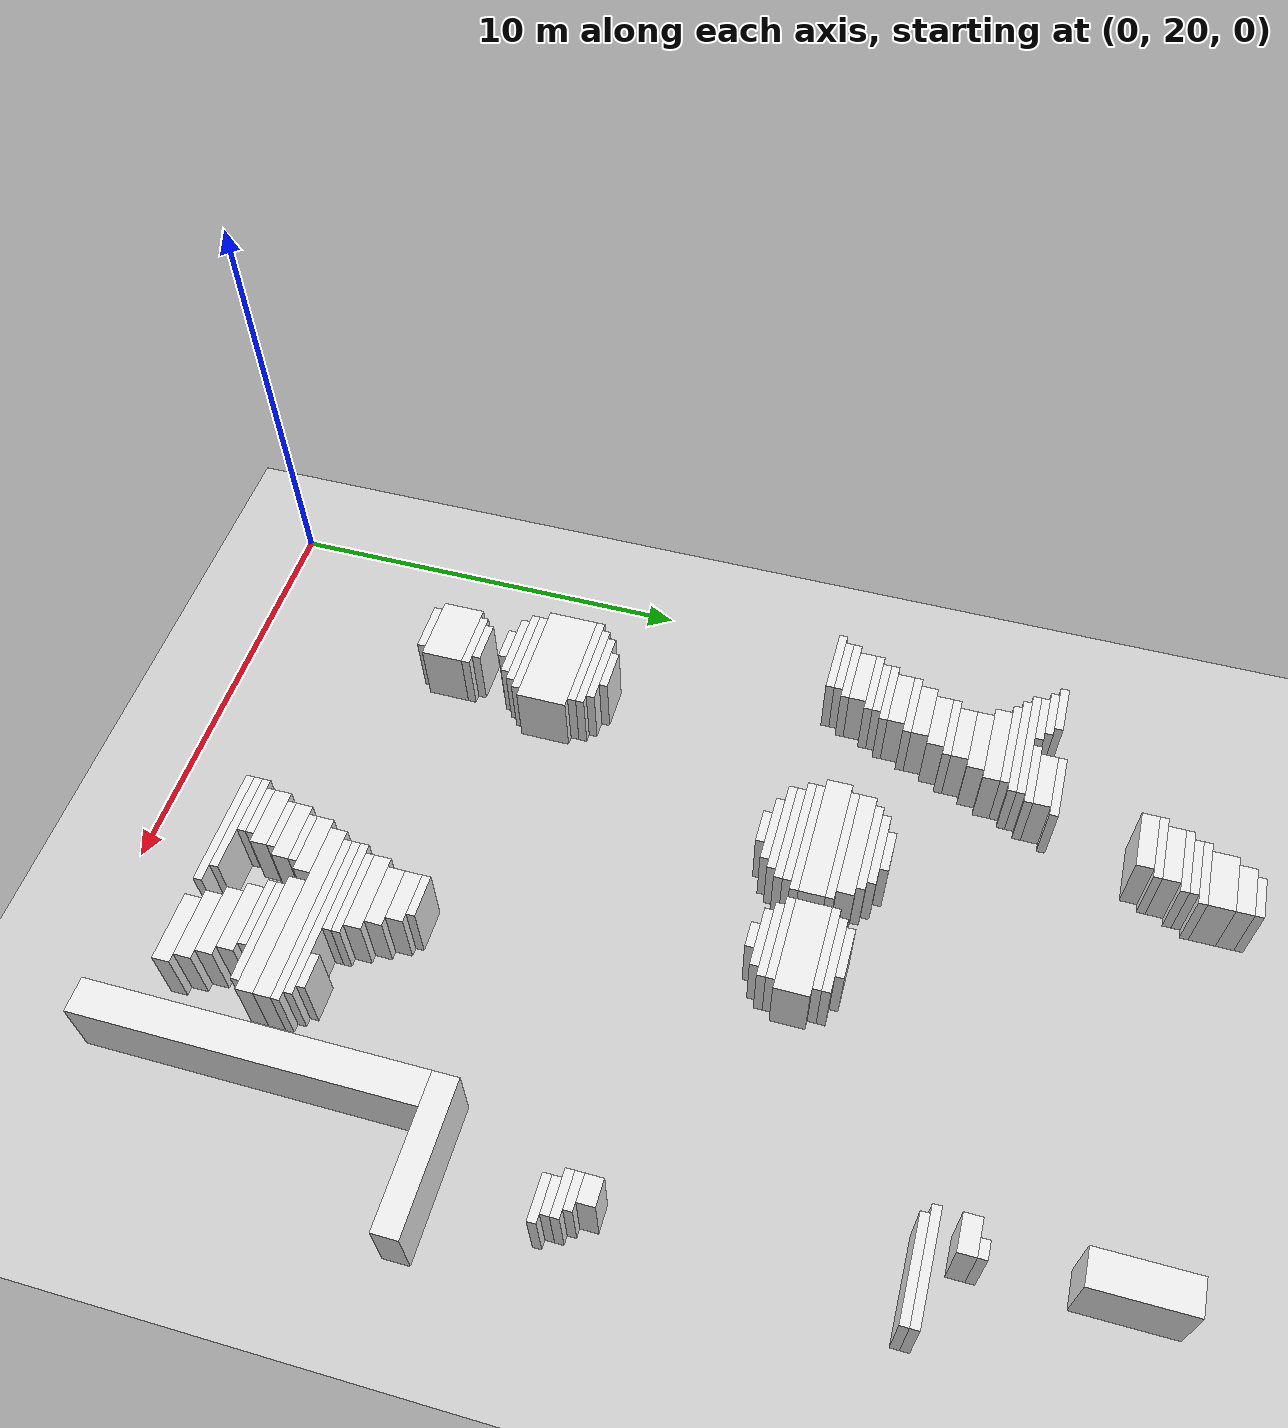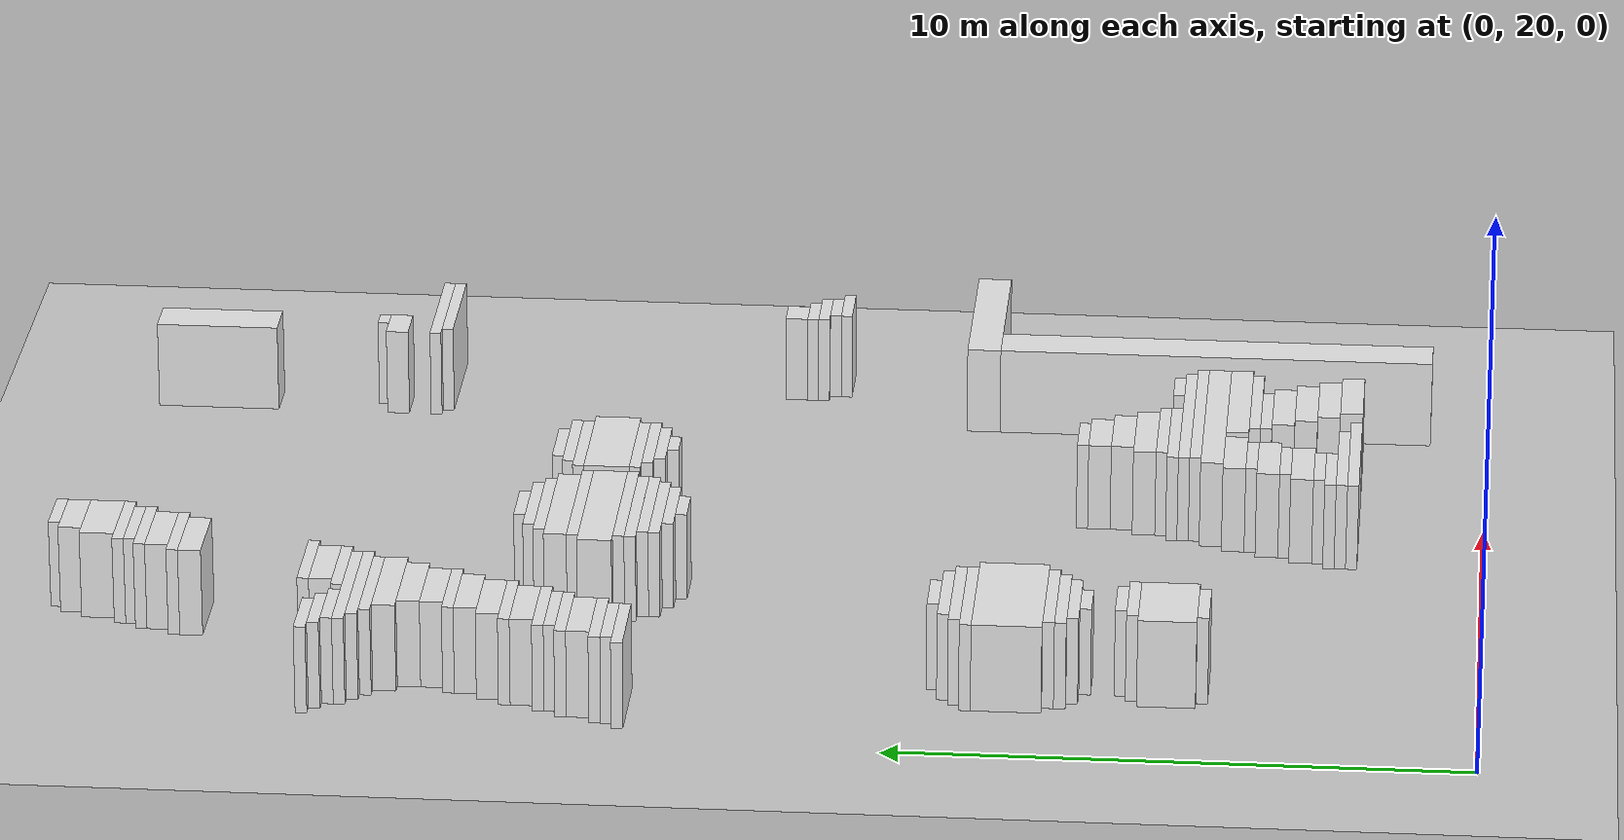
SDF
<sdf version="1.7">
 <world name="default">
  <model name="ground_plane">
   <static>1</static>
   <link name="link">
    <collision name="collision">
     <geometry><plane><normal>0 0 1</normal><size>120 120</size></plane></geometry>
    </collision>
    <visual name="visual">
     <geometry><plane><normal>0 0 1</normal><size>120 120</size></plane></geometry>
     <material>
      <script><uri>file://media/materials/scripts/gazebo.material</uri><name>Gazebo/Grey</name></script>
     </material>
    </visual>
   </link>
  </model>
  <model name="random_complex_03_model">
   <static>1</static>
   <link name="obs_75">
    <pose>5.3000 44.7000 0.8000 0 0 0</pose>
    <collision name="obs_75_col"><geometry><box><size>1.0000 0.2000 1.6000</size></box></geometry></collision>
    <visual name="obs_75_vis">
     <geometry><box><size>1.0000 0.2000 1.6000</size></box></geometry>
     <material>
      <script><uri>file://media/materials/scripts/gazebo.material</uri><name>Gazebo/White</name></script>
     </material>
    </visual>
   </link>
   <link name="obs_82">
    <pose>5.2000 44.4000 0.8000 0 0 0</pose>
    <collision name="obs_82_col"><geometry><box><size>1.2000 0.4000 1.6000</size></box></geometry></collision>
    <visual name="obs_82_vis">
     <geometry><box><size>1.2000 0.4000 1.6000</size></box></geometry>
     <material>
      <script><uri>file://media/materials/scripts/gazebo.material</uri><name>Gazebo/White</name></script>
     </material>
    </visual>
   </link>
   <link name="obs_94">
    <pose>5.1000 43.9000 0.8000 0 0 0</pose>
    <collision name="obs_94_col"><geometry><box><size>1.4000 0.6000 1.6000</size></box></geometry></collision>
    <visual name="obs_94_vis">
     <geometry><box><size>1.4000 0.6000 1.6000</size></box></geometry>
     <material>
      <script><uri>file://media/materials/scripts/gazebo.material</uri><name>Gazebo/White</name></script>
     </material>
    </visual>
   </link>
   <link name="obs_105">
    <pose>5.0000 43.5000 0.8000 0 0 0</pose>
    <collision name="obs_105_col"><geometry><box><size>1.6000 0.2000 1.6000</size></box></geometry></collision>
    <visual name="obs_105_vis">
     <geometry><box><size>1.6000 0.2000 1.6000</size></box></geometry>
     <material>
      <script><uri>file://media/materials/scripts/gazebo.material</uri><name>Gazebo/White</name></script>
     </material>
    </visual>
   </link>
   <link name="obs_112">
    <pose>4.9000 43.3000 0.8000 0 0 0</pose>
    <collision name="obs_112_col"><geometry><box><size>1.4000 0.2000 1.6000</size></box></geometry></collision>
    <visual name="obs_112_vis">
     <geometry><box><size>1.4000 0.2000 1.6000</size></box></geometry>
     <material>
      <script><uri>file://media/materials/scripts/gazebo.material</uri><name>Gazebo/White</name></script>
     </material>
    </visual>
   </link>
   <link name="obs_118">
    <pose>4.8000 43.1000 0.8000 0 0 0</pose>
    <collision name="obs_118_col"><geometry><box><size>1.6000 0.2000 1.6000</size></box></geometry></collision>
    <visual name="obs_118_vis">
     <geometry><box><size>1.6000 0.2000 1.6000</size></box></geometry>
     <material>
      <script><uri>file://media/materials/scripts/gazebo.material</uri><name>Gazebo/White</name></script>
     </material>
    </visual>
   </link>
   <link name="obs_124">
    <pose>4.7000 42.8000 0.8000 0 0 0</pose>
    <collision name="obs_124_col"><geometry><box><size>1.4000 0.4000 1.6000</size></box></geometry></collision>
    <visual name="obs_124_vis">
     <geometry><box><size>1.4000 0.4000 1.6000</size></box></geometry>
     <material>
      <script><uri>file://media/materials/scripts/gazebo.material</uri><name>Gazebo/White</name></script>
     </material>
    </visual>
   </link>
   <link name="obs_131">
    <pose>4.6000 42.5000 0.8000 0 0 0</pose>
    <collision name="obs_131_col"><geometry><box><size>1.6000 0.2000 1.6000</size></box></geometry></collision>
    <visual name="obs_131_vis">
     <geometry><box><size>1.6000 0.2000 1.6000</size></box></geometry>
     <material>
      <script><uri>file://media/materials/scripts/gazebo.material</uri><name>Gazebo/White</name></script>
     </material>
    </visual>
   </link>
   <link name="obs_139">
    <pose>14.2000 43.1000 0.8000 0 0 0</pose>
    <collision name="obs_139_col"><geometry><box><size>0.8000 2.2000 1.6000</size></box></geometry></collision>
    <visual name="obs_139_vis">
     <geometry><box><size>0.8000 2.2000 1.6000</size></box></geometry>
     <material>
      <script><uri>file://media/materials/scripts/gazebo.material</uri><name>Gazebo/White</name></script>
     </material>
    </visual>
   </link>
   <link name="obs_142">
    <pose>4.5000 42.2000 0.8000 0 0 0</pose>
    <collision name="obs_142_col"><geometry><box><size>1.4000 0.4000 1.6000</size></box></geometry></collision>
    <visual name="obs_142_vis">
     <geometry><box><size>1.4000 0.4000 1.6000</size></box></geometry>
     <material>
      <script><uri>file://media/materials/scripts/gazebo.material</uri><name>Gazebo/White</name></script>
     </material>
    </visual>
   </link>
   <link name="obs_188">
    <pose>3.6000 40.1000 0.8000 0 0 0</pose>
    <collision name="obs_188_col"><geometry><box><size>1.6000 0.2000 1.6000</size></box></geometry></collision>
    <visual name="obs_188_vis">
     <geometry><box><size>1.6000 0.2000 1.6000</size></box></geometry>
     <material>
      <script><uri>file://media/materials/scripts/gazebo.material</uri><name>Gazebo/White</name></script>
     </material>
    </visual>
   </link>
   <link name="obs_189">
    <pose>14.4000 40.1000 0.8000 0 0 0</pose>
    <collision name="obs_189_col"><geometry><box><size>0.4000 0.2000 1.6000</size></box></geometry></collision>
    <visual name="obs_189_vis">
     <geometry><box><size>0.4000 0.2000 1.6000</size></box></geometry>
     <material>
      <script><uri>file://media/materials/scripts/gazebo.material</uri><name>Gazebo/White</name></script>
     </material>
    </visual>
   </link>
   <link name="obs_193">
    <pose>1.4000 39.9000 0.8000 0 0 0</pose>
    <collision name="obs_193_col"><geometry><box><size>1.2000 0.2000 1.6000</size></box></geometry></collision>
    <visual name="obs_193_vis">
     <geometry><box><size>1.2000 0.2000 1.6000</size></box></geometry>
     <material>
      <script><uri>file://media/materials/scripts/gazebo.material</uri><name>Gazebo/White</name></script>
     </material>
    </visual>
   </link>
   <link name="obs_195">
    <pose>3.5000 39.8000 0.8000 0 0 0</pose>
    <collision name="obs_195_col"><geometry><box><size>1.4000 0.4000 1.6000</size></box></geometry></collision>
    <visual name="obs_195_vis">
     <geometry><box><size>1.4000 0.4000 1.6000</size></box></geometry>
     <material>
      <script><uri>file://media/materials/scripts/gazebo.material</uri><name>Gazebo/White</name></script>
     </material>
    </visual>
   </link>
   <link name="obs_196">
    <pose>14.2000 39.8000 0.8000 0 0 0</pose>
    <collision name="obs_196_col"><geometry><box><size>0.8000 0.4000 1.6000</size></box></geometry></collision>
    <visual name="obs_196_vis">
     <geometry><box><size>0.8000 0.4000 1.6000</size></box></geometry>
     <material>
      <script><uri>file://media/materials/scripts/gazebo.material</uri><name>Gazebo/White</name></script>
     </material>
    </visual>
   </link>
   <link name="obs_197">
    <pose>1.6000 39.7000 0.8000 0 0 0</pose>
    <collision name="obs_197_col"><geometry><box><size>1.2000 0.2000 1.6000</size></box></geometry></collision>
    <visual name="obs_197_vis">
     <geometry><box><size>1.2000 0.2000 1.6000</size></box></geometry>
     <material>
      <script><uri>file://media/materials/scripts/gazebo.material</uri><name>Gazebo/White</name></script>
     </material>
    </visual>
   </link>
   <link name="obs_201">
    <pose>1.8000 39.5000 0.8000 0 0 0</pose>
    <collision name="obs_201_col"><geometry><box><size>1.2000 0.2000 1.6000</size></box></geometry></collision>
    <visual name="obs_201_vis">
     <geometry><box><size>1.2000 0.2000 1.6000</size></box></geometry>
     <material>
      <script><uri>file://media/materials/scripts/gazebo.material</uri><name>Gazebo/White</name></script>
     </material>
    </visual>
   </link>
   <link name="obs_202">
    <pose>3.4000 39.5000 0.8000 0 0 0</pose>
    <collision name="obs_202_col"><geometry><box><size>1.6000 0.2000 1.6000</size></box></geometry></collision>
    <visual name="obs_202_vis">
     <geometry><box><size>1.6000 0.2000 1.6000</size></box></geometry>
     <material>
      <script><uri>file://media/materials/scripts/gazebo.material</uri><name>Gazebo/White</name></script>
     </material>
    </visual>
   </link>
   <link name="obs_208">
    <pose>2.6000 39.3000 0.8000 0 0 0</pose>
    <collision name="obs_208_col"><geometry><box><size>2.8000 0.2000 1.6000</size></box></geometry></collision>
    <visual name="obs_208_vis">
     <geometry><box><size>2.8000 0.2000 1.6000</size></box></geometry>
     <material>
      <script><uri>file://media/materials/scripts/gazebo.material</uri><name>Gazebo/White</name></script>
     </material>
    </visual>
   </link>
   <link name="obs_216">
    <pose>2.7000 39.1000 0.8000 0 0 0</pose>
    <collision name="obs_216_col"><geometry><box><size>2.6000 0.2000 1.6000</size></box></geometry></collision>
    <visual name="obs_216_vis">
     <geometry><box><size>2.6000 0.2000 1.6000</size></box></geometry>
     <material>
      <script><uri>file://media/materials/scripts/gazebo.material</uri><name>Gazebo/White</name></script>
     </material>
    </visual>
   </link>
   <link name="obs_217">
    <pose>15.0000 39.1000 0.8000 0 0 0</pose>
    <collision name="obs_217_col"><geometry><box><size>2.4000 0.2000 1.6000</size></box></geometry></collision>
    <visual name="obs_217_vis">
     <geometry><box><size>2.4000 0.2000 1.6000</size></box></geometry>
     <material>
      <script><uri>file://media/materials/scripts/gazebo.material</uri><name>Gazebo/White</name></script>
     </material>
    </visual>
   </link>
   <link name="obs_224">
    <pose>2.7000 38.9000 0.8000 0 0 0</pose>
    <collision name="obs_224_col"><geometry><box><size>2.2000 0.2000 1.6000</size></box></geometry></collision>
    <visual name="obs_224_vis">
     <geometry><box><size>2.2000 0.2000 1.6000</size></box></geometry>
     <material>
      <script><uri>file://media/materials/scripts/gazebo.material</uri><name>Gazebo/White</name></script>
     </material>
    </visual>
   </link>
   <link name="obs_225">
    <pose>15.1000 38.9000 0.8000 0 0 0</pose>
    <collision name="obs_225_col"><geometry><box><size>2.2000 0.2000 1.6000</size></box></geometry></collision>
    <visual name="obs_225_vis">
     <geometry><box><size>2.2000 0.2000 1.6000</size></box></geometry>
     <material>
      <script><uri>file://media/materials/scripts/gazebo.material</uri><name>Gazebo/White</name></script>
     </material>
    </visual>
   </link>
   <link name="obs_236">
    <pose>2.8000 38.6000 0.8000 0 0 0</pose>
    <collision name="obs_236_col"><geometry><box><size>2.0000 0.4000 1.6000</size></box></geometry></collision>
    <visual name="obs_236_vis">
     <geometry><box><size>2.0000 0.4000 1.6000</size></box></geometry>
     <material>
      <script><uri>file://media/materials/scripts/gazebo.material</uri><name>Gazebo/White</name></script>
     </material>
    </visual>
   </link>
   <link name="obs_246">
    <pose>2.8000 38.2000 0.8000 0 0 0</pose>
    <collision name="obs_246_col"><geometry><box><size>1.6000 0.4000 1.6000</size></box></geometry></collision>
    <visual name="obs_246_vis">
     <geometry><box><size>1.6000 0.4000 1.6000</size></box></geometry>
     <material>
      <script><uri>file://media/materials/scripts/gazebo.material</uri><name>Gazebo/White</name></script>
     </material>
    </visual>
   </link>
   <link name="obs_252">
    <pose>2.7000 37.8000 0.8000 0 0 0</pose>
    <collision name="obs_252_col"><geometry><box><size>1.4000 0.4000 1.6000</size></box></geometry></collision>
    <visual name="obs_252_vis">
     <geometry><box><size>1.4000 0.4000 1.6000</size></box></geometry>
     <material>
      <script><uri>file://media/materials/scripts/gazebo.material</uri><name>Gazebo/White</name></script>
     </material>
    </visual>
   </link>
   <link name="obs_256">
    <pose>2.6000 37.5000 0.8000 0 0 0</pose>
    <collision name="obs_256_col"><geometry><box><size>1.6000 0.2000 1.6000</size></box></geometry></collision>
    <visual name="obs_256_vis">
     <geometry><box><size>1.6000 0.2000 1.6000</size></box></geometry>
     <material>
      <script><uri>file://media/materials/scripts/gazebo.material</uri><name>Gazebo/White</name></script>
     </material>
    </visual>
   </link>
   <link name="obs_260">
    <pose>2.5000 37.2000 0.8000 0 0 0</pose>
    <collision name="obs_260_col"><geometry><box><size>1.4000 0.4000 1.6000</size></box></geometry></collision>
    <visual name="obs_260_vis">
     <geometry><box><size>1.4000 0.4000 1.6000</size></box></geometry>
     <material>
      <script><uri>file://media/materials/scripts/gazebo.material</uri><name>Gazebo/White</name></script>
     </material>
    </visual>
   </link>
   <link name="obs_267">
    <pose>2.3000 36.8000 0.8000 0 0 0</pose>
    <collision name="obs_267_col"><geometry><box><size>1.4000 0.4000 1.6000</size></box></geometry></collision>
    <visual name="obs_267_vis">
     <geometry><box><size>1.4000 0.4000 1.6000</size></box></geometry>
     <material>
      <script><uri>file://media/materials/scripts/gazebo.material</uri><name>Gazebo/White</name></script>
     </material>
    </visual>
   </link>
   <link name="obs_269">
    <pose>6.3000 36.7000 0.8000 0 0 0</pose>
    <collision name="obs_269_col"><geometry><box><size>1.0000 0.2000 1.6000</size></box></geometry></collision>
    <visual name="obs_269_vis">
     <geometry><box><size>1.0000 0.2000 1.6000</size></box></geometry>
     <material>
      <script><uri>file://media/materials/scripts/gazebo.material</uri><name>Gazebo/White</name></script>
     </material>
    </visual>
   </link>
   <link name="obs_273">
    <pose>2.2000 36.5000 0.8000 0 0 0</pose>
    <collision name="obs_273_col"><geometry><box><size>1.6000 0.2000 1.6000</size></box></geometry></collision>
    <visual name="obs_273_vis">
     <geometry><box><size>1.6000 0.2000 1.6000</size></box></geometry>
     <material>
      <script><uri>file://media/materials/scripts/gazebo.material</uri><name>Gazebo/White</name></script>
     </material>
    </visual>
   </link>
   <link name="obs_274">
    <pose>6.3000 36.5000 0.8000 0 0 0</pose>
    <collision name="obs_274_col"><geometry><box><size>1.8000 0.2000 1.6000</size></box></geometry></collision>
    <visual name="obs_274_vis">
     <geometry><box><size>1.8000 0.2000 1.6000</size></box></geometry>
     <material>
      <script><uri>file://media/materials/scripts/gazebo.material</uri><name>Gazebo/White</name></script>
     </material>
    </visual>
   </link>
   <link name="obs_278">
    <pose>6.3000 36.3000 0.8000 0 0 0</pose>
    <collision name="obs_278_col"><geometry><box><size>2.2000 0.2000 1.6000</size></box></geometry></collision>
    <visual name="obs_278_vis">
     <geometry><box><size>2.2000 0.2000 1.6000</size></box></geometry>
     <material>
      <script><uri>file://media/materials/scripts/gazebo.material</uri><name>Gazebo/White</name></script>
     </material>
    </visual>
   </link>
   <link name="obs_279">
    <pose>9.0000 36.3000 0.8000 0 0 0</pose>
    <collision name="obs_279_col"><geometry><box><size>1.2000 0.2000 1.6000</size></box></geometry></collision>
    <visual name="obs_279_vis">
     <geometry><box><size>1.2000 0.2000 1.6000</size></box></geometry>
     <material>
      <script><uri>file://media/materials/scripts/gazebo.material</uri><name>Gazebo/White</name></script>
     </material>
    </visual>
   </link>
   <link name="obs_287">
    <pose>2.1000 36.2000 0.8000 0 0 0</pose>
    <collision name="obs_287_col"><geometry><box><size>1.4000 0.4000 1.6000</size></box></geometry></collision>
    <visual name="obs_287_vis">
     <geometry><box><size>1.4000 0.4000 1.6000</size></box></geometry>
     <material>
      <script><uri>file://media/materials/scripts/gazebo.material</uri><name>Gazebo/White</name></script>
     </material>
    </visual>
   </link>
   <link name="obs_288">
    <pose>9.1000 36.1000 0.8000 0 0 0</pose>
    <collision name="obs_288_col"><geometry><box><size>1.8000 0.2000 1.6000</size></box></geometry></collision>
    <visual name="obs_288_vis">
     <geometry><box><size>1.8000 0.2000 1.6000</size></box></geometry>
     <material>
      <script><uri>file://media/materials/scripts/gazebo.material</uri><name>Gazebo/White</name></script>
     </material>
    </visual>
   </link>
   <link name="obs_294">
    <pose>6.3000 36.0000 0.8000 0 0 0</pose>
    <collision name="obs_294_col"><geometry><box><size>2.6000 0.4000 1.6000</size></box></geometry></collision>
    <visual name="obs_294_vis">
     <geometry><box><size>2.6000 0.4000 1.6000</size></box></geometry>
     <material>
      <script><uri>file://media/materials/scripts/gazebo.material</uri><name>Gazebo/White</name></script>
     </material>
    </visual>
   </link>
   <link name="obs_297">
    <pose>2.0000 35.9000 0.8000 0 0 0</pose>
    <collision name="obs_297_col"><geometry><box><size>1.6000 0.2000 1.6000</size></box></geometry></collision>
    <visual name="obs_297_vis">
     <geometry><box><size>1.6000 0.2000 1.6000</size></box></geometry>
     <material>
      <script><uri>file://media/materials/scripts/gazebo.material</uri><name>Gazebo/White</name></script>
     </material>
    </visual>
   </link>
   <link name="obs_298">
    <pose>9.0000 35.9000 0.8000 0 0 0</pose>
    <collision name="obs_298_col"><geometry><box><size>2.0000 0.2000 1.6000</size></box></geometry></collision>
    <visual name="obs_298_vis">
     <geometry><box><size>2.0000 0.2000 1.6000</size></box></geometry>
     <material>
      <script><uri>file://media/materials/scripts/gazebo.material</uri><name>Gazebo/White</name></script>
     </material>
    </visual>
   </link>
   <link name="obs_304">
    <pose>1.9000 35.7000 0.8000 0 0 0</pose>
    <collision name="obs_304_col"><geometry><box><size>1.4000 0.2000 1.6000</size></box></geometry></collision>
    <visual name="obs_304_vis">
     <geometry><box><size>1.4000 0.2000 1.6000</size></box></geometry>
     <material>
      <script><uri>file://media/materials/scripts/gazebo.material</uri><name>Gazebo/White</name></script>
     </material>
    </visual>
   </link>
   <link name="obs_305">
    <pose>6.4000 35.7000 0.8000 0 0 0</pose>
    <collision name="obs_305_col"><geometry><box><size>2.8000 0.2000 1.6000</size></box></geometry></collision>
    <visual name="obs_305_vis">
     <geometry><box><size>2.8000 0.2000 1.6000</size></box></geometry>
     <material>
      <script><uri>file://media/materials/scripts/gazebo.material</uri><name>Gazebo/White</name></script>
     </material>
    </visual>
   </link>
   <link name="obs_313">
    <pose>1.8000 35.5000 0.8000 0 0 0</pose>
    <collision name="obs_313_col"><geometry><box><size>1.6000 0.2000 1.6000</size></box></geometry></collision>
    <visual name="obs_313_vis">
     <geometry><box><size>1.6000 0.2000 1.6000</size></box></geometry>
     <material>
      <script><uri>file://media/materials/scripts/gazebo.material</uri><name>Gazebo/White</name></script>
     </material>
    </visual>
   </link>
   <link name="obs_323">
    <pose>9.1000 35.4000 0.8000 0 0 0</pose>
    <collision name="obs_323_col"><geometry><box><size>2.2000 0.8000 1.6000</size></box></geometry></collision>
    <visual name="obs_323_vis">
     <geometry><box><size>2.2000 0.8000 1.6000</size></box></geometry>
     <material>
      <script><uri>file://media/materials/scripts/gazebo.material</uri><name>Gazebo/White</name></script>
     </material>
    </visual>
   </link>
   <link name="obs_326">
    <pose>6.3000 35.3000 0.8000 0 0 0</pose>
    <collision name="obs_326_col"><geometry><box><size>3.0000 0.6000 1.6000</size></box></geometry></collision>
    <visual name="obs_326_vis">
     <geometry><box><size>3.0000 0.6000 1.6000</size></box></geometry>
     <material>
      <script><uri>file://media/materials/scripts/gazebo.material</uri><name>Gazebo/White</name></script>
     </material>
    </visual>
   </link>
   <link name="obs_327">
    <pose>1.7000 35.2000 0.8000 0 0 0</pose>
    <collision name="obs_327_col"><geometry><box><size>1.4000 0.4000 1.6000</size></box></geometry></collision>
    <visual name="obs_327_vis">
     <geometry><box><size>1.4000 0.4000 1.6000</size></box></geometry>
     <material>
      <script><uri>file://media/materials/scripts/gazebo.material</uri><name>Gazebo/White</name></script>
     </material>
    </visual>
   </link>
   <link name="obs_340">
    <pose>1.6000 34.9000 0.8000 0 0 0</pose>
    <collision name="obs_340_col"><geometry><box><size>1.6000 0.2000 1.6000</size></box></geometry></collision>
    <visual name="obs_340_vis">
     <geometry><box><size>1.6000 0.2000 1.6000</size></box></geometry>
     <material>
      <script><uri>file://media/materials/scripts/gazebo.material</uri><name>Gazebo/White</name></script>
     </material>
    </visual>
   </link>
   <link name="obs_341">
    <pose>6.4000 34.9000 0.8000 0 0 0</pose>
    <collision name="obs_341_col"><geometry><box><size>2.8000 0.2000 1.6000</size></box></geometry></collision>
    <visual name="obs_341_vis">
     <geometry><box><size>2.8000 0.2000 1.6000</size></box></geometry>
     <material>
      <script><uri>file://media/materials/scripts/gazebo.material</uri><name>Gazebo/White</name></script>
     </material>
    </visual>
   </link>
   <link name="obs_342">
    <pose>9.0000 34.9000 0.8000 0 0 0</pose>
    <collision name="obs_342_col"><geometry><box><size>2.0000 0.2000 1.6000</size></box></geometry></collision>
    <visual name="obs_342_vis">
     <geometry><box><size>2.0000 0.2000 1.6000</size></box></geometry>
     <material>
      <script><uri>file://media/materials/scripts/gazebo.material</uri><name>Gazebo/White</name></script>
     </material>
    </visual>
   </link>
   <link name="obs_349">
    <pose>1.5000 34.7000 0.8000 0 0 0</pose>
    <collision name="obs_349_col"><geometry><box><size>1.4000 0.2000 1.6000</size></box></geometry></collision>
    <visual name="obs_349_vis">
     <geometry><box><size>1.4000 0.2000 1.6000</size></box></geometry>
     <material>
      <script><uri>file://media/materials/scripts/gazebo.material</uri><name>Gazebo/White</name></script>
     </material>
    </visual>
   </link>
   <link name="obs_350">
    <pose>6.3000 34.7000 0.8000 0 0 0</pose>
    <collision name="obs_350_col"><geometry><box><size>2.6000 0.2000 1.6000</size></box></geometry></collision>
    <visual name="obs_350_vis">
     <geometry><box><size>2.6000 0.2000 1.6000</size></box></geometry>
     <material>
      <script><uri>file://media/materials/scripts/gazebo.material</uri><name>Gazebo/White</name></script>
     </material>
    </visual>
   </link>
   <link name="obs_351">
    <pose>9.1000 34.7000 0.8000 0 0 0</pose>
    <collision name="obs_351_col"><geometry><box><size>1.8000 0.2000 1.6000</size></box></geometry></collision>
    <visual name="obs_351_vis">
     <geometry><box><size>1.8000 0.2000 1.6000</size></box></geometry>
     <material>
      <script><uri>file://media/materials/scripts/gazebo.material</uri><name>Gazebo/White</name></script>
     </material>
    </visual>
   </link>
   <link name="obs_359">
    <pose>1.4000 34.5000 0.8000 0 0 0</pose>
    <collision name="obs_359_col"><geometry><box><size>1.6000 0.2000 1.6000</size></box></geometry></collision>
    <visual name="obs_359_vis">
     <geometry><box><size>1.6000 0.2000 1.6000</size></box></geometry>
     <material>
      <script><uri>file://media/materials/scripts/gazebo.material</uri><name>Gazebo/White</name></script>
     </material>
    </visual>
   </link>
   <link name="obs_360">
    <pose>6.4000 34.5000 0.8000 0 0 0</pose>
    <collision name="obs_360_col"><geometry><box><size>2.4000 0.2000 1.6000</size></box></geometry></collision>
    <visual name="obs_360_vis">
     <geometry><box><size>2.4000 0.2000 1.6000</size></box></geometry>
     <material>
      <script><uri>file://media/materials/scripts/gazebo.material</uri><name>Gazebo/White</name></script>
     </material>
    </visual>
   </link>
   <link name="obs_361">
    <pose>9.1000 34.5000 0.8000 0 0 0</pose>
    <collision name="obs_361_col"><geometry><box><size>1.4000 0.2000 1.6000</size></box></geometry></collision>
    <visual name="obs_361_vis">
     <geometry><box><size>1.4000 0.2000 1.6000</size></box></geometry>
     <material>
      <script><uri>file://media/materials/scripts/gazebo.material</uri><name>Gazebo/White</name></script>
     </material>
    </visual>
   </link>
   <link name="obs_368">
    <pose>6.3000 34.3000 0.8000 0 0 0</pose>
    <collision name="obs_368_col"><geometry><box><size>2.2000 0.2000 1.6000</size></box></geometry></collision>
    <visual name="obs_368_vis">
     <geometry><box><size>2.2000 0.2000 1.6000</size></box></geometry>
     <material>
      <script><uri>file://media/materials/scripts/gazebo.material</uri><name>Gazebo/White</name></script>
     </material>
    </visual>
   </link>
   <link name="obs_369">
    <pose>9.1000 34.3000 0.8000 0 0 0</pose>
    <collision name="obs_369_col"><geometry><box><size>0.6000 0.2000 1.6000</size></box></geometry></collision>
    <visual name="obs_369_vis">
     <geometry><box><size>0.6000 0.2000 1.6000</size></box></geometry>
     <material>
      <script><uri>file://media/materials/scripts/gazebo.material</uri><name>Gazebo/White</name></script>
     </material>
    </visual>
   </link>
   <link name="obs_377">
    <pose>6.4000 34.1000 0.8000 0 0 0</pose>
    <collision name="obs_377_col"><geometry><box><size>1.6000 0.2000 1.6000</size></box></geometry></collision>
    <visual name="obs_377_vis">
     <geometry><box><size>1.6000 0.2000 1.6000</size></box></geometry>
     <material>
      <script><uri>file://media/materials/scripts/gazebo.material</uri><name>Gazebo/White</name></script>
     </material>
    </visual>
   </link>
   <link name="obs_384">
    <pose>6.4000 33.9000 0.8000 0 0 0</pose>
    <collision name="obs_384_col"><geometry><box><size>0.8000 0.2000 1.6000</size></box></geometry></collision>
    <visual name="obs_384_vis">
     <geometry><box><size>0.8000 0.2000 1.6000</size></box></geometry>
     <material>
      <script><uri>file://media/materials/scripts/gazebo.material</uri><name>Gazebo/White</name></script>
     </material>
    </visual>
   </link>
   <link name="obs_436">
    <pose>15.3000 32.6000 0.8000 0 0 0</pose>
    <collision name="obs_436_col"><geometry><box><size>0.6000 0.4000 1.6000</size></box></geometry></collision>
    <visual name="obs_436_vis">
     <geometry><box><size>0.6000 0.4000 1.6000</size></box></geometry>
     <material>
      <script><uri>file://media/materials/scripts/gazebo.material</uri><name>Gazebo/White</name></script>
     </material>
    </visual>
   </link>
   <link name="obs_450">
    <pose>15.4000 32.3000 0.8000 0 0 0</pose>
    <collision name="obs_450_col"><geometry><box><size>0.8000 0.2000 1.6000</size></box></geometry></collision>
    <visual name="obs_450_vis">
     <geometry><box><size>0.8000 0.2000 1.6000</size></box></geometry>
     <material>
      <script><uri>file://media/materials/scripts/gazebo.material</uri><name>Gazebo/White</name></script>
     </material>
    </visual>
   </link>
   <link name="obs_458">
    <pose>15.5000 32.1000 0.8000 0 0 0</pose>
    <collision name="obs_458_col"><geometry><box><size>1.0000 0.2000 1.6000</size></box></geometry></collision>
    <visual name="obs_458_vis">
     <geometry><box><size>1.0000 0.2000 1.6000</size></box></geometry>
     <material>
      <script><uri>file://media/materials/scripts/gazebo.material</uri><name>Gazebo/White</name></script>
     </material>
    </visual>
   </link>
   <link name="obs_468">
    <pose>15.6000 31.9000 0.8000 0 0 0</pose>
    <collision name="obs_468_col"><geometry><box><size>0.8000 0.2000 1.6000</size></box></geometry></collision>
    <visual name="obs_468_vis">
     <geometry><box><size>0.8000 0.2000 1.6000</size></box></geometry>
     <material>
      <script><uri>file://media/materials/scripts/gazebo.material</uri><name>Gazebo/White</name></script>
     </material>
    </visual>
   </link>
   <link name="obs_476">
    <pose>15.7000 31.7000 0.8000 0 0 0</pose>
    <collision name="obs_476_col"><geometry><box><size>1.0000 0.2000 1.6000</size></box></geometry></collision>
    <visual name="obs_476_vis">
     <geometry><box><size>1.0000 0.2000 1.6000</size></box></geometry>
     <material>
      <script><uri>file://media/materials/scripts/gazebo.material</uri><name>Gazebo/White</name></script>
     </material>
    </visual>
   </link>
   <link name="obs_569">
    <pose>3.1000 29.3000 0.8000 0 0 0</pose>
    <collision name="obs_569_col"><geometry><box><size>1.0000 0.2000 1.6000</size></box></geometry></collision>
    <visual name="obs_569_vis">
     <geometry><box><size>1.0000 0.2000 1.6000</size></box></geometry>
     <material>
      <script><uri>file://media/materials/scripts/gazebo.material</uri><name>Gazebo/White</name></script>
     </material>
    </visual>
   </link>
   <link name="obs_578">
    <pose>3.1000 29.1000 0.8000 0 0 0</pose>
    <collision name="obs_578_col"><geometry><box><size>1.8000 0.2000 1.6000</size></box></geometry></collision>
    <visual name="obs_578_vis">
     <geometry><box><size>1.8000 0.2000 1.6000</size></box></geometry>
     <material>
      <script><uri>file://media/materials/scripts/gazebo.material</uri><name>Gazebo/White</name></script>
     </material>
    </visual>
   </link>
   <link name="obs_580">
    <pose>15.5000 29.1000 0.8000 0 0 0</pose>
    <collision name="obs_580_col"><geometry><box><size>3.4000 0.6000 1.6000</size></box></geometry></collision>
    <visual name="obs_580_vis">
     <geometry><box><size>3.4000 0.6000 1.6000</size></box></geometry>
     <material>
      <script><uri>file://media/materials/scripts/gazebo.material</uri><name>Gazebo/White</name></script>
     </material>
    </visual>
   </link>
   <link name="obs_585">
    <pose>3.1000 28.9000 0.8000 0 0 0</pose>
    <collision name="obs_585_col"><geometry><box><size>2.2000 0.2000 1.6000</size></box></geometry></collision>
    <visual name="obs_585_vis">
     <geometry><box><size>2.2000 0.2000 1.6000</size></box></geometry>
     <material>
      <script><uri>file://media/materials/scripts/gazebo.material</uri><name>Gazebo/White</name></script>
     </material>
    </visual>
   </link>
   <link name="obs_593">
    <pose>3.0000 28.7000 0.8000 0 0 0</pose>
    <collision name="obs_593_col"><geometry><box><size>2.4000 0.2000 1.6000</size></box></geometry></collision>
    <visual name="obs_593_vis">
     <geometry><box><size>2.4000 0.2000 1.6000</size></box></geometry>
     <material>
      <script><uri>file://media/materials/scripts/gazebo.material</uri><name>Gazebo/White</name></script>
     </material>
    </visual>
   </link>
   <link name="obs_627">
    <pose>3.1000 28.0000 0.8000 0 0 0</pose>
    <collision name="obs_627_col"><geometry><box><size>2.6000 1.2000 1.6000</size></box></geometry></collision>
    <visual name="obs_627_vis">
     <geometry><box><size>2.6000 1.2000 1.6000</size></box></geometry>
     <material>
      <script><uri>file://media/materials/scripts/gazebo.material</uri><name>Gazebo/White</name></script>
     </material>
    </visual>
   </link>
   <link name="obs_639">
    <pose>3.1000 27.3000 0.8000 0 0 0</pose>
    <collision name="obs_639_col"><geometry><box><size>2.2000 0.2000 1.6000</size></box></geometry></collision>
    <visual name="obs_639_vis">
     <geometry><box><size>2.2000 0.2000 1.6000</size></box></geometry>
     <material>
      <script><uri>file://media/materials/scripts/gazebo.material</uri><name>Gazebo/White</name></script>
     </material>
    </visual>
   </link>
   <link name="obs_646">
    <pose>3.0000 27.1000 0.8000 0 0 0</pose>
    <collision name="obs_646_col"><geometry><box><size>2.0000 0.2000 1.6000</size></box></geometry></collision>
    <visual name="obs_646_vis">
     <geometry><box><size>2.0000 0.2000 1.6000</size></box></geometry>
     <material>
      <script><uri>file://media/materials/scripts/gazebo.material</uri><name>Gazebo/White</name></script>
     </material>
    </visual>
   </link>
   <link name="obs_647">
    <pose>10.1000 27.1000 0.8000 0 0 0</pose>
    <collision name="obs_647_col"><geometry><box><size>1.0000 0.2000 1.6000</size></box></geometry></collision>
    <visual name="obs_647_vis">
     <geometry><box><size>1.0000 0.2000 1.6000</size></box></geometry>
     <material>
      <script><uri>file://media/materials/scripts/gazebo.material</uri><name>Gazebo/White</name></script>
     </material>
    </visual>
   </link>
   <link name="obs_657">
    <pose>3.0000 26.9000 0.8000 0 0 0</pose>
    <collision name="obs_657_col"><geometry><box><size>1.6000 0.2000 1.6000</size></box></geometry></collision>
    <visual name="obs_657_vis">
     <geometry><box><size>1.6000 0.2000 1.6000</size></box></geometry>
     <material>
      <script><uri>file://media/materials/scripts/gazebo.material</uri><name>Gazebo/White</name></script>
     </material>
    </visual>
   </link>
   <link name="obs_661">
    <pose>10.2000 26.8000 0.8000 0 0 0</pose>
    <collision name="obs_661_col"><geometry><box><size>1.2000 0.4000 1.6000</size></box></geometry></collision>
    <visual name="obs_661_vis">
     <geometry><box><size>1.2000 0.4000 1.6000</size></box></geometry>
     <material>
      <script><uri>file://media/materials/scripts/gazebo.material</uri><name>Gazebo/White</name></script>
     </material>
    </visual>
   </link>
   <link name="obs_667">
    <pose>3.0000 26.7000 0.8000 0 0 0</pose>
    <collision name="obs_667_col"><geometry><box><size>0.8000 0.2000 1.6000</size></box></geometry></collision>
    <visual name="obs_667_vis">
     <geometry><box><size>0.8000 0.2000 1.6000</size></box></geometry>
     <material>
      <script><uri>file://media/materials/scripts/gazebo.material</uri><name>Gazebo/White</name></script>
     </material>
    </visual>
   </link>
   <link name="obs_679">
    <pose>10.3000 26.4000 0.8000 0 0 0</pose>
    <collision name="obs_679_col"><geometry><box><size>1.4000 0.4000 1.6000</size></box></geometry></collision>
    <visual name="obs_679_vis">
     <geometry><box><size>1.4000 0.4000 1.6000</size></box></geometry>
     <material>
      <script><uri>file://media/materials/scripts/gazebo.material</uri><name>Gazebo/White</name></script>
     </material>
    </visual>
   </link>
   <link name="obs_691">
    <pose>3.1000 26.1000 0.8000 0 0 0</pose>
    <collision name="obs_691_col"><geometry><box><size>1.0000 0.2000 1.6000</size></box></geometry></collision>
    <visual name="obs_691_vis">
     <geometry><box><size>1.0000 0.2000 1.6000</size></box></geometry>
     <material>
      <script><uri>file://media/materials/scripts/gazebo.material</uri><name>Gazebo/White</name></script>
     </material>
    </visual>
   </link>
   <link name="obs_695">
    <pose>10.3000 26.0000 0.8000 0 0 0</pose>
    <collision name="obs_695_col"><geometry><box><size>1.8000 0.4000 1.6000</size></box></geometry></collision>
    <visual name="obs_695_vis">
     <geometry><box><size>1.8000 0.4000 1.6000</size></box></geometry>
     <material>
      <script><uri>file://media/materials/scripts/gazebo.material</uri><name>Gazebo/White</name></script>
     </material>
    </visual>
   </link>
   <link name="obs_699">
    <pose>3.1000 25.9000 0.8000 0 0 0</pose>
    <collision name="obs_699_col"><geometry><box><size>1.4000 0.2000 1.6000</size></box></geometry></collision>
    <visual name="obs_699_vis">
     <geometry><box><size>1.4000 0.2000 1.6000</size></box></geometry>
     <material>
      <script><uri>file://media/materials/scripts/gazebo.material</uri><name>Gazebo/White</name></script>
     </material>
    </visual>
   </link>
   <link name="obs_705">
    <pose>10.4000 25.7000 0.8000 0 0 0</pose>
    <collision name="obs_705_col"><geometry><box><size>2.0000 0.2000 1.6000</size></box></geometry></collision>
    <visual name="obs_705_vis">
     <geometry><box><size>2.0000 0.2000 1.6000</size></box></geometry>
     <material>
      <script><uri>file://media/materials/scripts/gazebo.material</uri><name>Gazebo/White</name></script>
     </material>
    </visual>
   </link>
   <link name="obs_711">
    <pose>10.3000 25.5000 0.8000 0 0 0</pose>
    <collision name="obs_711_col"><geometry><box><size>2.2000 0.2000 1.6000</size></box></geometry></collision>
    <visual name="obs_711_vis">
     <geometry><box><size>2.2000 0.2000 1.6000</size></box></geometry>
     <material>
      <script><uri>file://media/materials/scripts/gazebo.material</uri><name>Gazebo/White</name></script>
     </material>
    </visual>
   </link>
   <link name="obs_712">
    <pose>12.4000 25.5000 0.8000 0 0 0</pose>
    <collision name="obs_712_col"><geometry><box><size>0.8000 0.2000 1.6000</size></box></geometry></collision>
    <visual name="obs_712_vis">
     <geometry><box><size>0.8000 0.2000 1.6000</size></box></geometry>
     <material>
      <script><uri>file://media/materials/scripts/gazebo.material</uri><name>Gazebo/White</name></script>
     </material>
    </visual>
   </link>
   <link name="obs_719">
    <pose>11.1000 25.3000 0.8000 0 0 0</pose>
    <collision name="obs_719_col"><geometry><box><size>3.8000 0.2000 1.6000</size></box></geometry></collision>
    <visual name="obs_719_vis">
     <geometry><box><size>3.8000 0.2000 1.6000</size></box></geometry>
     <material>
      <script><uri>file://media/materials/scripts/gazebo.material</uri><name>Gazebo/White</name></script>
     </material>
    </visual>
   </link>
   <link name="obs_724">
    <pose>11.2000 25.1000 0.8000 0 0 0</pose>
    <collision name="obs_724_col"><geometry><box><size>4.0000 0.2000 1.6000</size></box></geometry></collision>
    <visual name="obs_724_vis">
     <geometry><box><size>4.0000 0.2000 1.6000</size></box></geometry>
     <material>
      <script><uri>file://media/materials/scripts/gazebo.material</uri><name>Gazebo/White</name></script>
     </material>
    </visual>
   </link>
   <link name="obs_730">
    <pose>3.0000 25.3000 0.8000 0 0 0</pose>
    <collision name="obs_730_col"><geometry><box><size>1.6000 1.0000 1.6000</size></box></geometry></collision>
    <visual name="obs_730_vis">
     <geometry><box><size>1.6000 1.0000 1.6000</size></box></geometry>
     <material>
      <script><uri>file://media/materials/scripts/gazebo.material</uri><name>Gazebo/White</name></script>
     </material>
    </visual>
   </link>
   <link name="obs_739">
    <pose>11.1000 24.8000 0.8000 0 0 0</pose>
    <collision name="obs_739_col"><geometry><box><size>4.2000 0.4000 1.6000</size></box></geometry></collision>
    <visual name="obs_739_vis">
     <geometry><box><size>4.2000 0.4000 1.6000</size></box></geometry>
     <material>
      <script><uri>file://media/materials/scripts/gazebo.material</uri><name>Gazebo/White</name></script>
     </material>
    </visual>
   </link>
   <link name="obs_742">
    <pose>3.0000 24.7000 0.8000 0 0 0</pose>
    <collision name="obs_742_col"><geometry><box><size>1.2000 0.2000 1.6000</size></box></geometry></collision>
    <visual name="obs_742_vis">
     <geometry><box><size>1.2000 0.2000 1.6000</size></box></geometry>
     <material>
      <script><uri>file://media/materials/scripts/gazebo.material</uri><name>Gazebo/White</name></script>
     </material>
    </visual>
   </link>
   <link name="obs_753">
    <pose>9.5000 24.4000 0.8000 0 0 0</pose>
    <collision name="obs_753_col"><geometry><box><size>1.4000 0.4000 1.6000</size></box></geometry></collision>
    <visual name="obs_753_vis">
     <geometry><box><size>1.4000 0.4000 1.6000</size></box></geometry>
     <material>
      <script><uri>file://media/materials/scripts/gazebo.material</uri><name>Gazebo/White</name></script>
     </material>
    </visual>
   </link>
   <link name="obs_754">
    <pose>11.8000 24.4000 0.8000 0 0 0</pose>
    <collision name="obs_754_col"><geometry><box><size>2.8000 0.4000 1.6000</size></box></geometry></collision>
    <visual name="obs_754_vis">
     <geometry><box><size>2.8000 0.4000 1.6000</size></box></geometry>
     <material>
      <script><uri>file://media/materials/scripts/gazebo.material</uri><name>Gazebo/White</name></script>
     </material>
    </visual>
   </link>
   <link name="obs_765">
    <pose>9.4000 24.1000 0.8000 0 0 0</pose>
    <collision name="obs_765_col"><geometry><box><size>1.2000 0.2000 1.6000</size></box></geometry></collision>
    <visual name="obs_765_vis">
     <geometry><box><size>1.2000 0.2000 1.6000</size></box></geometry>
     <material>
      <script><uri>file://media/materials/scripts/gazebo.material</uri><name>Gazebo/White</name></script>
     </material>
    </visual>
   </link>
   <link name="obs_766">
    <pose>11.8000 24.1000 0.8000 0 0 0</pose>
    <collision name="obs_766_col"><geometry><box><size>2.4000 0.2000 1.6000</size></box></geometry></collision>
    <visual name="obs_766_vis">
     <geometry><box><size>2.4000 0.2000 1.6000</size></box></geometry>
     <material>
      <script><uri>file://media/materials/scripts/gazebo.material</uri><name>Gazebo/White</name></script>
     </material>
    </visual>
   </link>
   <link name="obs_771">
    <pose>11.4000 23.9000 0.8000 0 0 0</pose>
    <collision name="obs_771_col"><geometry><box><size>1.6000 0.2000 1.6000</size></box></geometry></collision>
    <visual name="obs_771_vis">
     <geometry><box><size>1.6000 0.2000 1.6000</size></box></geometry>
     <material>
      <script><uri>file://media/materials/scripts/gazebo.material</uri><name>Gazebo/White</name></script>
     </material>
    </visual>
   </link>
   <link name="obs_776">
    <pose>9.3000 23.8000 0.8000 0 0 0</pose>
    <collision name="obs_776_col"><geometry><box><size>1.4000 0.4000 1.6000</size></box></geometry></collision>
    <visual name="obs_776_vis">
     <geometry><box><size>1.4000 0.4000 1.6000</size></box></geometry>
     <material>
      <script><uri>file://media/materials/scripts/gazebo.material</uri><name>Gazebo/White</name></script>
     </material>
    </visual>
   </link>
   <link name="obs_782">
    <pose>11.6000 23.6000 0.8000 0 0 0</pose>
    <collision name="obs_782_col"><geometry><box><size>1.6000 0.4000 1.6000</size></box></geometry></collision>
    <visual name="obs_782_vis">
     <geometry><box><size>1.6000 0.4000 1.6000</size></box></geometry>
     <material>
      <script><uri>file://media/materials/scripts/gazebo.material</uri><name>Gazebo/White</name></script>
     </material>
    </visual>
   </link>
   <link name="obs_784">
    <pose>9.2000 23.5000 0.8000 0 0 0</pose>
    <collision name="obs_784_col"><geometry><box><size>1.2000 0.2000 1.6000</size></box></geometry></collision>
    <visual name="obs_784_vis">
     <geometry><box><size>1.2000 0.2000 1.6000</size></box></geometry>
     <material>
      <script><uri>file://media/materials/scripts/gazebo.material</uri><name>Gazebo/White</name></script>
     </material>
    </visual>
   </link>
   <link name="obs_797">
    <pose>9.1000 23.2000 0.8000 0 0 0</pose>
    <collision name="obs_797_col"><geometry><box><size>1.4000 0.4000 1.6000</size></box></geometry></collision>
    <visual name="obs_797_vis">
     <geometry><box><size>1.4000 0.4000 1.6000</size></box></geometry>
     <material>
      <script><uri>file://media/materials/scripts/gazebo.material</uri><name>Gazebo/White</name></script>
     </material>
    </visual>
   </link>
   <link name="obs_798">
    <pose>11.8000 23.2000 0.8000 0 0 0</pose>
    <collision name="obs_798_col"><geometry><box><size>1.6000 0.4000 1.6000</size></box></geometry></collision>
    <visual name="obs_798_vis">
     <geometry><box><size>1.6000 0.4000 1.6000</size></box></geometry>
     <material>
      <script><uri>file://media/materials/scripts/gazebo.material</uri><name>Gazebo/White</name></script>
     </material>
    </visual>
   </link>
   <link name="obs_810">
    <pose>9.0000 22.9000 0.8000 0 0 0</pose>
    <collision name="obs_810_col"><geometry><box><size>1.2000 0.2000 1.6000</size></box></geometry></collision>
    <visual name="obs_810_vis">
     <geometry><box><size>1.2000 0.2000 1.6000</size></box></geometry>
     <material>
      <script><uri>file://media/materials/scripts/gazebo.material</uri><name>Gazebo/White</name></script>
     </material>
    </visual>
   </link>
   <link name="obs_817">
    <pose>12.0000 22.8000 0.8000 0 0 0</pose>
    <collision name="obs_817_col"><geometry><box><size>1.6000 0.4000 1.6000</size></box></geometry></collision>
    <visual name="obs_817_vis">
     <geometry><box><size>1.6000 0.4000 1.6000</size></box></geometry>
     <material>
      <script><uri>file://media/materials/scripts/gazebo.material</uri><name>Gazebo/White</name></script>
     </material>
    </visual>
   </link>
   <link name="obs_821">
    <pose>8.9000 22.7000 0.8000 0 0 0</pose>
    <collision name="obs_821_col"><geometry><box><size>1.4000 0.2000 1.6000</size></box></geometry></collision>
    <visual name="obs_821_vis">
     <geometry><box><size>1.4000 0.2000 1.6000</size></box></geometry>
     <material>
      <script><uri>file://media/materials/scripts/gazebo.material</uri><name>Gazebo/White</name></script>
     </material>
    </visual>
   </link>
   <link name="obs_830">
    <pose>9.4000 22.5000 0.8000 0 0 0</pose>
    <collision name="obs_830_col"><geometry><box><size>2.4000 0.2000 1.6000</size></box></geometry></collision>
    <visual name="obs_830_vis">
     <geometry><box><size>2.4000 0.2000 1.6000</size></box></geometry>
     <material>
      <script><uri>file://media/materials/scripts/gazebo.material</uri><name>Gazebo/White</name></script>
     </material>
    </visual>
   </link>
   <link name="obs_836">
    <pose>12.2000 22.4000 0.8000 0 0 0</pose>
    <collision name="obs_836_col"><geometry><box><size>1.6000 0.4000 1.6000</size></box></geometry></collision>
    <visual name="obs_836_vis">
     <geometry><box><size>1.6000 0.4000 1.6000</size></box></geometry>
     <material>
      <script><uri>file://media/materials/scripts/gazebo.material</uri><name>Gazebo/White</name></script>
     </material>
    </visual>
   </link>
   <link name="obs_840">
    <pose>9.6000 22.3000 0.8000 0 0 0</pose>
    <collision name="obs_840_col"><geometry><box><size>2.8000 0.2000 1.6000</size></box></geometry></collision>
    <visual name="obs_840_vis">
     <geometry><box><size>2.8000 0.2000 1.6000</size></box></geometry>
     <material>
      <script><uri>file://media/materials/scripts/gazebo.material</uri><name>Gazebo/White</name></script>
     </material>
    </visual>
   </link>
   <link name="obs_887">
    <pose>14.2000 24.9000 0.8000 0 0 0</pose>
    <collision name="obs_887_col"><geometry><box><size>0.8000 7.8000 1.6000</size></box></geometry></collision>
    <visual name="obs_887_vis">
     <geometry><box><size>0.8000 7.8000 1.6000</size></box></geometry>
     <material>
      <script><uri>file://media/materials/scripts/gazebo.material</uri><name>Gazebo/White</name></script>
     </material>
    </visual>
   </link>
  </model>
 </world>
</sdf>
